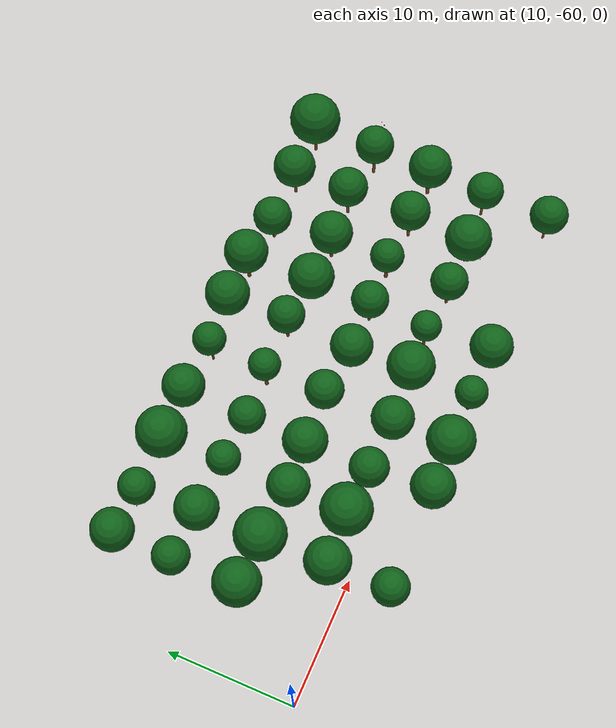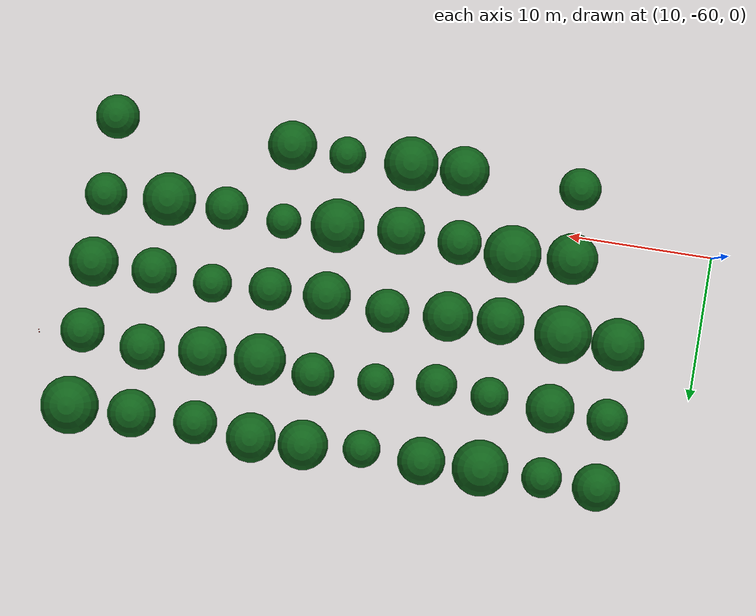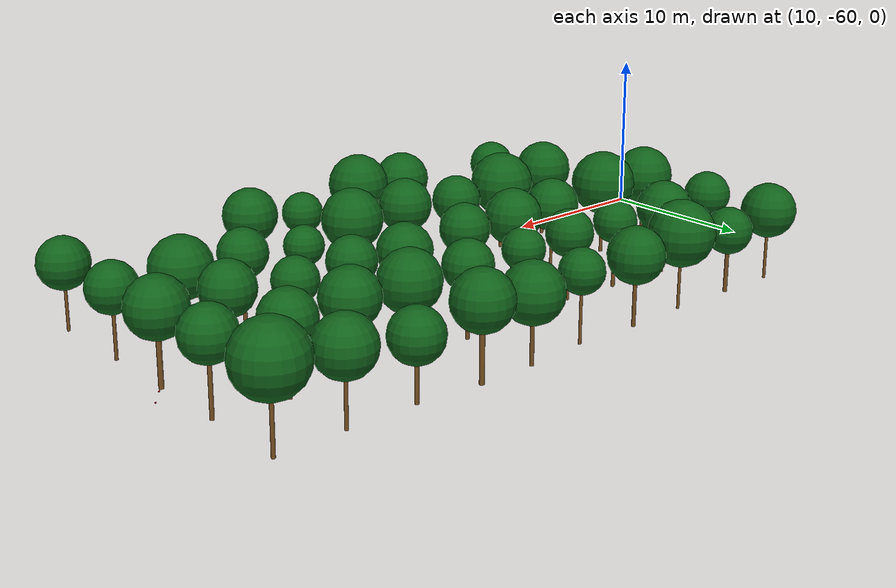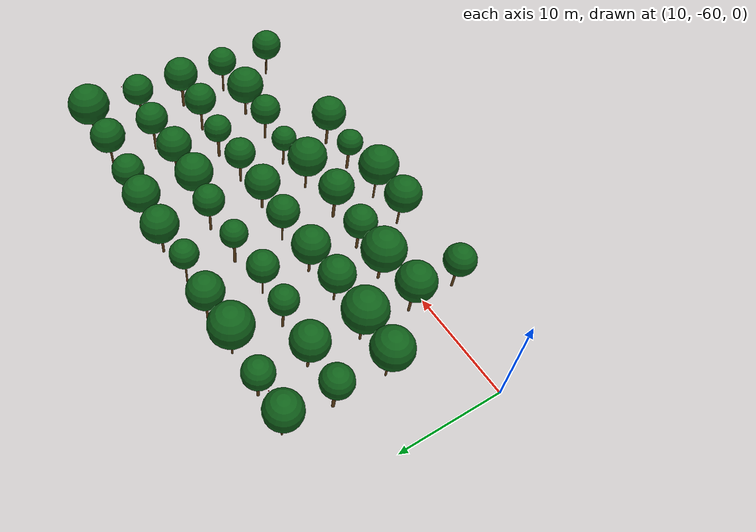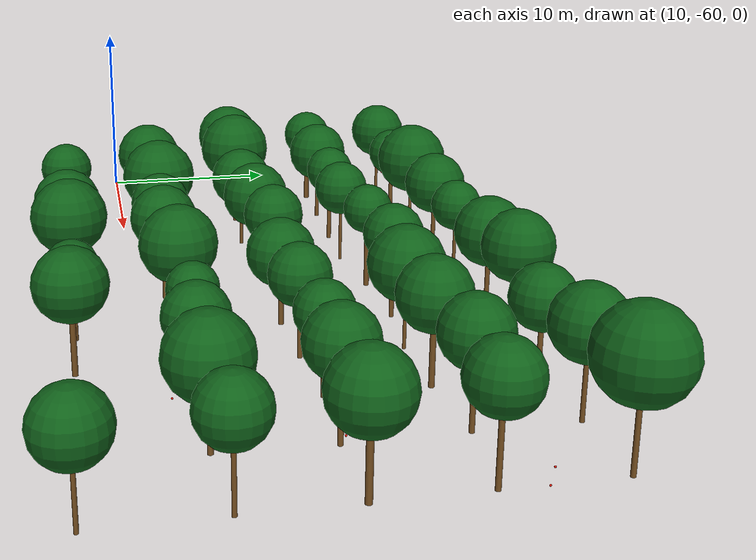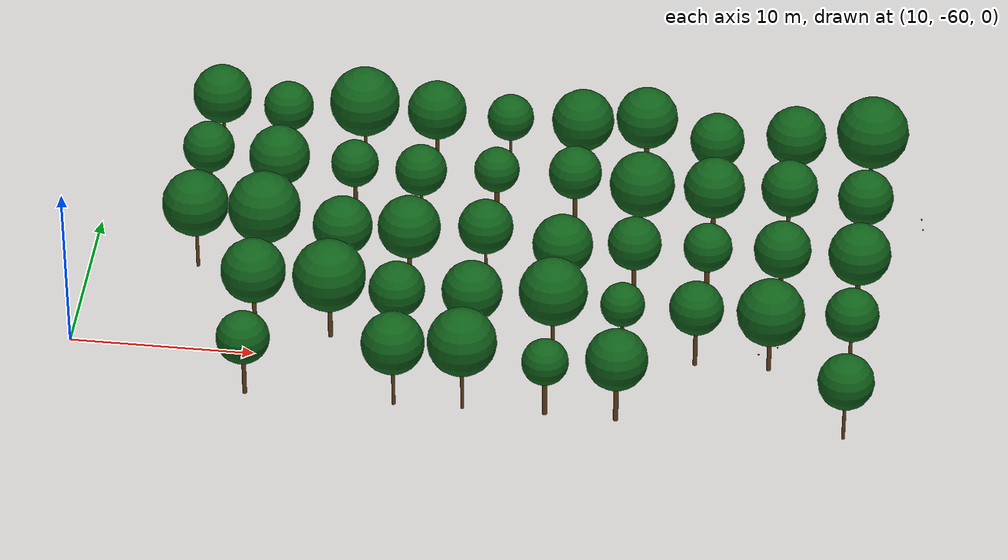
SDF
<sdf version="1.9">
 <world name="cheongsong_orchard">
  <model name="apple_tree_576">
   <static>true</static>
   <pose>19.97 -63.18 0 0 0 0</pose>
   <link name="link">
    <collision name="trunk_col">
     <pose>0 0 1.22 0 0 0</pose>
     <geometry><cylinder><radius>0.114</radius><length>2.45</length></cylinder></geometry>
    </collision>
    <visual name="trunk_vis">
     <pose>0 0 1.22 0 0 0</pose>
     <geometry><cylinder><radius>0.114</radius><length>2.45</length></cylinder></geometry>
     <material><ambient>0.35 0.22 0.08 1</ambient><diffuse>0.45 0.30 0.12 1</diffuse></material>
    </visual>
    <collision name="canopy_col">
     <pose>0 0 3.88 0 0 0</pose>
     <geometry><sphere><radius>1.44</radius></sphere></geometry>
    </collision>
    <visual name="canopy_vis">
     <pose>0 0 3.88 0 0 0</pose>
     <geometry><sphere><radius>1.44</radius></sphere></geometry>
     <material><ambient>0.04 0.28 0.06 1</ambient><diffuse>0.06 0.38 0.10 1</diffuse></material>
    </visual>
   </link>
  </model>
  <model name="apple_tree_578">
   <static>true</static>
   <pose>27.97 -63.17 0 0 0 0</pose>
   <link name="link">
    <collision name="trunk_col">
     <pose>0 0 1.28 0 0 0</pose>
     <geometry><cylinder><radius>0.095</radius><length>2.56</length></cylinder></geometry>
    </collision>
    <visual name="trunk_vis">
     <pose>0 0 1.28 0 0 0</pose>
     <geometry><cylinder><radius>0.095</radius><length>2.56</length></cylinder></geometry>
     <material><ambient>0.35 0.22 0.08 1</ambient><diffuse>0.45 0.30 0.12 1</diffuse></material>
    </visual>
    <collision name="canopy_col">
     <pose>0 0 4.26 0 0 0</pose>
     <geometry><sphere><radius>1.70</radius></sphere></geometry>
    </collision>
    <visual name="canopy_vis">
     <pose>0 0 4.26 0 0 0</pose>
     <geometry><sphere><radius>1.70</radius></sphere></geometry>
     <material><ambient>0.04 0.28 0.06 1</ambient><diffuse>0.06 0.38 0.10 1</diffuse></material>
    </visual>
   </link>
  </model>
  <model name="apple_tree_579">
   <static>true</static>
   <pose>31.64 -63.08 0 0 0 0</pose>
   <link name="link">
    <collision name="trunk_col">
     <pose>0 0 1.38 0 0 0</pose>
     <geometry><cylinder><radius>0.094</radius><length>2.76</length></cylinder></geometry>
    </collision>
    <visual name="trunk_vis">
     <pose>0 0 1.38 0 0 0</pose>
     <geometry><cylinder><radius>0.094</radius><length>2.76</length></cylinder></geometry>
     <material><ambient>0.35 0.22 0.08 1</ambient><diffuse>0.45 0.30 0.12 1</diffuse></material>
    </visual>
    <collision name="canopy_col">
     <pose>0 0 4.63 0 0 0</pose>
     <geometry><sphere><radius>1.86</radius></sphere></geometry>
    </collision>
    <visual name="canopy_vis">
     <pose>0 0 4.63 0 0 0</pose>
     <geometry><sphere><radius>1.86</radius></sphere></geometry>
     <material><ambient>0.04 0.28 0.06 1</ambient><diffuse>0.06 0.38 0.10 1</diffuse></material>
    </visual>
   </link>
  </model>
  <model name="apple_tree_580">
   <static>true</static>
   <pose>36.04 -63.04 0 0 0 0</pose>
   <link name="link">
    <collision name="trunk_col">
     <pose>0 0 1.19 0 0 0</pose>
     <geometry><cylinder><radius>0.137</radius><length>2.37</length></cylinder></geometry>
    </collision>
    <visual name="trunk_vis">
     <pose>0 0 1.19 0 0 0</pose>
     <geometry><cylinder><radius>0.137</radius><length>2.37</length></cylinder></geometry>
     <material><ambient>0.35 0.22 0.08 1</ambient><diffuse>0.45 0.30 0.12 1</diffuse></material>
    </visual>
    <collision name="canopy_col">
     <pose>0 0 3.63 0 0 0</pose>
     <geometry><sphere><radius>1.26</radius></sphere></geometry>
    </collision>
    <visual name="canopy_vis">
     <pose>0 0 3.63 0 0 0</pose>
     <geometry><sphere><radius>1.26</radius></sphere></geometry>
     <material><ambient>0.04 0.28 0.06 1</ambient><diffuse>0.06 0.38 0.10 1</diffuse></material>
    </visual>
   </link>
  </model>
  <model name="apple_tree_581">
   <static>true</static>
   <pose>39.83 -63.10 0 0 0 0</pose>
   <link name="link">
    <collision name="trunk_col">
     <pose>0 0 1.28 0 0 0</pose>
     <geometry><cylinder><radius>0.133</radius><length>2.55</length></cylinder></geometry>
    </collision>
    <visual name="trunk_vis">
     <pose>0 0 1.28 0 0 0</pose>
     <geometry><cylinder><radius>0.133</radius><length>2.55</length></cylinder></geometry>
     <material><ambient>0.35 0.22 0.08 1</ambient><diffuse>0.45 0.30 0.12 1</diffuse></material>
    </visual>
    <collision name="canopy_col">
     <pose>0 0 4.22 0 0 0</pose>
     <geometry><sphere><radius>1.67</radius></sphere></geometry>
    </collision>
    <visual name="canopy_vis">
     <pose>0 0 4.22 0 0 0</pose>
     <geometry><sphere><radius>1.67</radius></sphere></geometry>
     <material><ambient>0.04 0.28 0.06 1</ambient><diffuse>0.06 0.38 0.10 1</diffuse></material>
    </visual>
   </link>
  </model>
  <model name="apple_tree_584">
   <static>true</static>
   <pose>51.91 -63.21 0 0 0 0</pose>
   <link name="link">
    <collision name="trunk_col">
     <pose>0 0 1.24 0 0 0</pose>
     <geometry><cylinder><radius>0.090</radius><length>2.47</length></cylinder></geometry>
    </collision>
    <visual name="trunk_vis">
     <pose>0 0 1.24 0 0 0</pose>
     <geometry><cylinder><radius>0.090</radius><length>2.47</length></cylinder></geometry>
     <material><ambient>0.35 0.22 0.08 1</ambient><diffuse>0.45 0.30 0.12 1</diffuse></material>
    </visual>
    <collision name="canopy_col">
     <pose>0 0 3.98 0 0 0</pose>
     <geometry><sphere><radius>1.51</radius></sphere></geometry>
    </collision>
    <visual name="canopy_vis">
     <pose>0 0 3.98 0 0 0</pose>
     <geometry><sphere><radius>1.51</radius></sphere></geometry>
     <material><ambient>0.04 0.28 0.06 1</ambient><diffuse>0.06 0.38 0.10 1</diffuse></material>
    </visual>
   </link>
  </model>
  <model name="apple_tree_633">
   <static>true</static>
   <pose>19.82 -58.37 0 0 0 0</pose>
   <link name="link">
    <collision name="trunk_col">
     <pose>0 0 1.36 0 0 0</pose>
     <geometry><cylinder><radius>0.116</radius><length>2.71</length></cylinder></geometry>
    </collision>
    <visual name="trunk_vis">
     <pose>0 0 1.36 0 0 0</pose>
     <geometry><cylinder><radius>0.116</radius><length>2.71</length></cylinder></geometry>
     <material><ambient>0.35 0.22 0.08 1</ambient><diffuse>0.45 0.30 0.12 1</diffuse></material>
    </visual>
    <collision name="canopy_col">
     <pose>0 0 4.47 0 0 0</pose>
     <geometry><sphere><radius>1.76</radius></sphere></geometry>
    </collision>
    <visual name="canopy_vis">
     <pose>0 0 4.47 0 0 0</pose>
     <geometry><sphere><radius>1.76</radius></sphere></geometry>
     <material><ambient>0.04 0.28 0.06 1</ambient><diffuse>0.06 0.38 0.10 1</diffuse></material>
    </visual>
   </link>
  </model>
  <model name="apple_tree_634">
   <static>true</static>
   <pose>23.88 -58.09 0 0 0 0</pose>
   <link name="link">
    <collision name="trunk_col">
     <pose>0 0 1.15 0 0 0</pose>
     <geometry><cylinder><radius>0.126</radius><length>2.30</length></cylinder></geometry>
    </collision>
    <visual name="trunk_vis">
     <pose>0 0 1.15 0 0 0</pose>
     <geometry><cylinder><radius>0.126</radius><length>2.30</length></cylinder></geometry>
     <material><ambient>0.35 0.22 0.08 1</ambient><diffuse>0.45 0.30 0.12 1</diffuse></material>
    </visual>
    <collision name="canopy_col">
     <pose>0 0 4.28 0 0 0</pose>
     <geometry><sphere><radius>1.98</radius></sphere></geometry>
    </collision>
    <visual name="canopy_vis">
     <pose>0 0 4.28 0 0 0</pose>
     <geometry><sphere><radius>1.98</radius></sphere></geometry>
     <material><ambient>0.04 0.28 0.06 1</ambient><diffuse>0.06 0.38 0.10 1</diffuse></material>
    </visual>
   </link>
  </model>
  <model name="apple_tree_635">
   <static>true</static>
   <pose>27.56 -58.32 0 0 0 0</pose>
   <link name="link">
    <collision name="trunk_col">
     <pose>0 0 1.17 0 0 0</pose>
     <geometry><cylinder><radius>0.127</radius><length>2.34</length></cylinder></geometry>
    </collision>
    <visual name="trunk_vis">
     <pose>0 0 1.17 0 0 0</pose>
     <geometry><cylinder><radius>0.127</radius><length>2.34</length></cylinder></geometry>
     <material><ambient>0.35 0.22 0.08 1</ambient><diffuse>0.45 0.30 0.12 1</diffuse></material>
    </visual>
    <collision name="canopy_col">
     <pose>0 0 3.86 0 0 0</pose>
     <geometry><sphere><radius>1.52</radius></sphere></geometry>
    </collision>
    <visual name="canopy_vis">
     <pose>0 0 3.86 0 0 0</pose>
     <geometry><sphere><radius>1.52</radius></sphere></geometry>
     <material><ambient>0.04 0.28 0.06 1</ambient><diffuse>0.06 0.38 0.10 1</diffuse></material>
    </visual>
   </link>
  </model>
  <model name="apple_tree_636">
   <static>true</static>
   <pose>31.63 -58.48 0 0 0 0</pose>
   <link name="link">
    <collision name="trunk_col">
     <pose>0 0 1.32 0 0 0</pose>
     <geometry><cylinder><radius>0.144</radius><length>2.64</length></cylinder></geometry>
    </collision>
    <visual name="trunk_vis">
     <pose>0 0 1.32 0 0 0</pose>
     <geometry><cylinder><radius>0.144</radius><length>2.64</length></cylinder></geometry>
     <material><ambient>0.35 0.22 0.08 1</ambient><diffuse>0.45 0.30 0.12 1</diffuse></material>
    </visual>
    <collision name="canopy_col">
     <pose>0 0 4.28 0 0 0</pose>
     <geometry><sphere><radius>1.64</radius></sphere></geometry>
    </collision>
    <visual name="canopy_vis">
     <pose>0 0 4.28 0 0 0</pose>
     <geometry><sphere><radius>1.64</radius></sphere></geometry>
     <material><ambient>0.04 0.28 0.06 1</ambient><diffuse>0.06 0.38 0.10 1</diffuse></material>
    </visual>
   </link>
  </model>
  <model name="apple_tree_637">
   <static>true</static>
   <pose>35.95 -58.15 0 0 0 0</pose>
   <link name="link">
    <collision name="trunk_col">
     <pose>0 0 1.26 0 0 0</pose>
     <geometry><cylinder><radius>0.104</radius><length>2.52</length></cylinder></geometry>
    </collision>
    <visual name="trunk_vis">
     <pose>0 0 1.26 0 0 0</pose>
     <geometry><cylinder><radius>0.104</radius><length>2.52</length></cylinder></geometry>
     <material><ambient>0.35 0.22 0.08 1</ambient><diffuse>0.45 0.30 0.12 1</diffuse></material>
    </visual>
    <collision name="canopy_col">
     <pose>0 0 4.37 0 0 0</pose>
     <geometry><sphere><radius>1.85</radius></sphere></geometry>
    </collision>
    <visual name="canopy_vis">
     <pose>0 0 4.37 0 0 0</pose>
     <geometry><sphere><radius>1.85</radius></sphere></geometry>
     <material><ambient>0.04 0.28 0.06 1</ambient><diffuse>0.06 0.38 0.10 1</diffuse></material>
    </visual>
   </link>
  </model>
  <model name="apple_tree_638">
   <static>true</static>
   <pose>39.65 -57.91 0 0 0 0</pose>
   <link name="link">
    <collision name="trunk_col">
     <pose>0 0 1.20 0 0 0</pose>
     <geometry><cylinder><radius>0.108</radius><length>2.39</length></cylinder></geometry>
    </collision>
    <visual name="trunk_vis">
     <pose>0 0 1.20 0 0 0</pose>
     <geometry><cylinder><radius>0.108</radius><length>2.39</length></cylinder></geometry>
     <material><ambient>0.35 0.22 0.08 1</ambient><diffuse>0.45 0.30 0.12 1</diffuse></material>
    </visual>
    <collision name="canopy_col">
     <pose>0 0 3.60 0 0 0</pose>
     <geometry><sphere><radius>1.20</radius></sphere></geometry>
    </collision>
    <visual name="canopy_vis">
     <pose>0 0 3.60 0 0 0</pose>
     <geometry><sphere><radius>1.20</radius></sphere></geometry>
     <material><ambient>0.04 0.28 0.06 1</ambient><diffuse>0.06 0.38 0.10 1</diffuse></material>
    </visual>
   </link>
  </model>
  <model name="apple_tree_639">
   <static>true</static>
   <pose>43.62 -58.19 0 0 0 0</pose>
   <link name="link">
    <collision name="trunk_col">
     <pose>0 0 1.25 0 0 0</pose>
     <geometry><cylinder><radius>0.115</radius><length>2.49</length></cylinder></geometry>
    </collision>
    <visual name="trunk_vis">
     <pose>0 0 1.25 0 0 0</pose>
     <geometry><cylinder><radius>0.115</radius><length>2.49</length></cylinder></geometry>
     <material><ambient>0.35 0.22 0.08 1</ambient><diffuse>0.45 0.30 0.12 1</diffuse></material>
    </visual>
    <collision name="canopy_col">
     <pose>0 0 3.97 0 0 0</pose>
     <geometry><sphere><radius>1.47</radius></sphere></geometry>
    </collision>
    <visual name="canopy_vis">
     <pose>0 0 3.97 0 0 0</pose>
     <geometry><sphere><radius>1.47</radius></sphere></geometry>
     <material><ambient>0.04 0.28 0.06 1</ambient><diffuse>0.06 0.38 0.10 1</diffuse></material>
    </visual>
   </link>
  </model>
  <model name="apple_tree_640">
   <static>true</static>
   <pose>47.58 -58.18 0 0 0 0</pose>
   <link name="link">
    <collision name="trunk_col">
     <pose>0 0 1.10 0 0 0</pose>
     <geometry><cylinder><radius>0.118</radius><length>2.20</length></cylinder></geometry>
    </collision>
    <visual name="trunk_vis">
     <pose>0 0 1.10 0 0 0</pose>
     <geometry><cylinder><radius>0.118</radius><length>2.20</length></cylinder></geometry>
     <material><ambient>0.35 0.22 0.08 1</ambient><diffuse>0.45 0.30 0.12 1</diffuse></material>
    </visual>
    <collision name="canopy_col">
     <pose>0 0 4.04 0 0 0</pose>
     <geometry><sphere><radius>1.83</radius></sphere></geometry>
    </collision>
    <visual name="canopy_vis">
     <pose>0 0 4.04 0 0 0</pose>
     <geometry><sphere><radius>1.83</radius></sphere></geometry>
     <material><ambient>0.04 0.28 0.06 1</ambient><diffuse>0.06 0.38 0.10 1</diffuse></material>
    </visual>
   </link>
  </model>
  <model name="apple_tree_641">
   <static>true</static>
   <pose>51.89 -57.89 0 0 0 0</pose>
   <link name="link">
    <collision name="trunk_col">
     <pose>0 0 1.30 0 0 0</pose>
     <geometry><cylinder><radius>0.096</radius><length>2.61</length></cylinder></geometry>
    </collision>
    <visual name="trunk_vis">
     <pose>0 0 1.30 0 0 0</pose>
     <geometry><cylinder><radius>0.096</radius><length>2.61</length></cylinder></geometry>
     <material><ambient>0.35 0.22 0.08 1</ambient><diffuse>0.45 0.30 0.12 1</diffuse></material>
    </visual>
    <collision name="canopy_col">
     <pose>0 0 4.06 0 0 0</pose>
     <geometry><sphere><radius>1.45</radius></sphere></geometry>
    </collision>
    <visual name="canopy_vis">
     <pose>0 0 4.06 0 0 0</pose>
     <geometry><sphere><radius>1.45</radius></sphere></geometry>
     <material><ambient>0.04 0.28 0.06 1</ambient><diffuse>0.06 0.38 0.10 1</diffuse></material>
    </visual>
   </link>
  </model>
  <model name="apple_tree_691">
   <static>true</static>
   <pose>15.86 -53.08 0 0 0 0</pose>
   <link name="link">
    <collision name="trunk_col">
     <pose>0 0 1.31 0 0 0</pose>
     <geometry><cylinder><radius>0.091</radius><length>2.62</length></cylinder></geometry>
    </collision>
    <visual name="trunk_vis">
     <pose>0 0 1.31 0 0 0</pose>
     <geometry><cylinder><radius>0.091</radius><length>2.62</length></cylinder></geometry>
     <material><ambient>0.35 0.22 0.08 1</ambient><diffuse>0.45 0.30 0.12 1</diffuse></material>
    </visual>
    <collision name="canopy_col">
     <pose>0 0 4.44 0 0 0</pose>
     <geometry><sphere><radius>1.82</radius></sphere></geometry>
    </collision>
    <visual name="canopy_vis">
     <pose>0 0 4.44 0 0 0</pose>
     <geometry><sphere><radius>1.82</radius></sphere></geometry>
     <material><ambient>0.04 0.28 0.06 1</ambient><diffuse>0.06 0.38 0.10 1</diffuse></material>
    </visual>
   </link>
  </model>
  <model name="apple_tree_692">
   <static>true</static>
   <pose>19.66 -53.19 0 0 0 0</pose>
   <link name="link">
    <collision name="trunk_col">
     <pose>0 0 1.31 0 0 0</pose>
     <geometry><cylinder><radius>0.104</radius><length>2.62</length></cylinder></geometry>
    </collision>
    <visual name="trunk_vis">
     <pose>0 0 1.31 0 0 0</pose>
     <geometry><cylinder><radius>0.104</radius><length>2.62</length></cylinder></geometry>
     <material><ambient>0.35 0.22 0.08 1</ambient><diffuse>0.45 0.30 0.12 1</diffuse></material>
    </visual>
    <collision name="canopy_col">
     <pose>0 0 4.59 0 0 0</pose>
     <geometry><sphere><radius>1.98</radius></sphere></geometry>
    </collision>
    <visual name="canopy_vis">
     <pose>0 0 4.59 0 0 0</pose>
     <geometry><sphere><radius>1.98</radius></sphere></geometry>
     <material><ambient>0.04 0.28 0.06 1</ambient><diffuse>0.06 0.38 0.10 1</diffuse></material>
    </visual>
   </link>
  </model>
  <model name="apple_tree_693">
   <static>true</static>
   <pose>23.97 -53.45 0 0 0 0</pose>
   <link name="link">
    <collision name="trunk_col">
     <pose>0 0 1.15 0 0 0</pose>
     <geometry><cylinder><radius>0.091</radius><length>2.30</length></cylinder></geometry>
    </collision>
    <visual name="trunk_vis">
     <pose>0 0 1.15 0 0 0</pose>
     <geometry><cylinder><radius>0.091</radius><length>2.30</length></cylinder></geometry>
     <material><ambient>0.35 0.22 0.08 1</ambient><diffuse>0.45 0.30 0.12 1</diffuse></material>
    </visual>
    <collision name="canopy_col">
     <pose>0 0 3.93 0 0 0</pose>
     <geometry><sphere><radius>1.63</radius></sphere></geometry>
    </collision>
    <visual name="canopy_vis">
     <pose>0 0 3.93 0 0 0</pose>
     <geometry><sphere><radius>1.63</radius></sphere></geometry>
     <material><ambient>0.04 0.28 0.06 1</ambient><diffuse>0.06 0.38 0.10 1</diffuse></material>
    </visual>
   </link>
  </model>
  <model name="apple_tree_694">
   <static>true</static>
   <pose>27.57 -53.20 0 0 0 0</pose>
   <link name="link">
    <collision name="trunk_col">
     <pose>0 0 1.13 0 0 0</pose>
     <geometry><cylinder><radius>0.119</radius><length>2.26</length></cylinder></geometry>
    </collision>
    <visual name="trunk_vis">
     <pose>0 0 1.13 0 0 0</pose>
     <geometry><cylinder><radius>0.119</radius><length>2.26</length></cylinder></geometry>
     <material><ambient>0.35 0.22 0.08 1</ambient><diffuse>0.45 0.30 0.12 1</diffuse></material>
    </visual>
    <collision name="canopy_col">
     <pose>0 0 3.97 0 0 0</pose>
     <geometry><sphere><radius>1.72</radius></sphere></geometry>
    </collision>
    <visual name="canopy_vis">
     <pose>0 0 3.97 0 0 0</pose>
     <geometry><sphere><radius>1.72</radius></sphere></geometry>
     <material><ambient>0.04 0.28 0.06 1</ambient><diffuse>0.06 0.38 0.10 1</diffuse></material>
    </visual>
   </link>
  </model>
  <model name="apple_tree_695">
   <static>true</static>
   <pose>31.72 -52.95 0 0 0 0</pose>
   <link name="link">
    <collision name="trunk_col">
     <pose>0 0 1.33 0 0 0</pose>
     <geometry><cylinder><radius>0.081</radius><length>2.66</length></cylinder></geometry>
    </collision>
    <visual name="trunk_vis">
     <pose>0 0 1.33 0 0 0</pose>
     <geometry><cylinder><radius>0.081</radius><length>2.66</length></cylinder></geometry>
     <material><ambient>0.35 0.22 0.08 1</ambient><diffuse>0.45 0.30 0.12 1</diffuse></material>
    </visual>
    <collision name="canopy_col">
     <pose>0 0 4.17 0 0 0</pose>
     <geometry><sphere><radius>1.50</radius></sphere></geometry>
    </collision>
    <visual name="canopy_vis">
     <pose>0 0 4.17 0 0 0</pose>
     <geometry><sphere><radius>1.50</radius></sphere></geometry>
     <material><ambient>0.04 0.28 0.06 1</ambient><diffuse>0.06 0.38 0.10 1</diffuse></material>
    </visual>
   </link>
  </model>
  <model name="apple_tree_696">
   <static>true</static>
   <pose>35.95 -53.34 0 0 0 0</pose>
   <link name="link">
    <collision name="trunk_col">
     <pose>0 0 0.99 0 0 0</pose>
     <geometry><cylinder><radius>0.129</radius><length>1.99</length></cylinder></geometry>
    </collision>
    <visual name="trunk_vis">
     <pose>0 0 0.99 0 0 0</pose>
     <geometry><cylinder><radius>0.129</radius><length>1.99</length></cylinder></geometry>
     <material><ambient>0.35 0.22 0.08 1</ambient><diffuse>0.45 0.30 0.12 1</diffuse></material>
    </visual>
    <collision name="canopy_col">
     <pose>0 0 3.64 0 0 0</pose>
     <geometry><sphere><radius>1.65</radius></sphere></geometry>
    </collision>
    <visual name="canopy_vis">
     <pose>0 0 3.64 0 0 0</pose>
     <geometry><sphere><radius>1.65</radius></sphere></geometry>
     <material><ambient>0.04 0.28 0.06 1</ambient><diffuse>0.06 0.38 0.10 1</diffuse></material>
    </visual>
   </link>
  </model>
  <model name="apple_tree_697">
   <static>true</static>
   <pose>39.84 -53.20 0 0 0 0</pose>
   <link name="link">
    <collision name="trunk_col">
     <pose>0 0 1.25 0 0 0</pose>
     <geometry><cylinder><radius>0.118</radius><length>2.50</length></cylinder></geometry>
    </collision>
    <visual name="trunk_vis">
     <pose>0 0 1.25 0 0 0</pose>
     <geometry><cylinder><radius>0.118</radius><length>2.50</length></cylinder></geometry>
     <material><ambient>0.35 0.22 0.08 1</ambient><diffuse>0.45 0.30 0.12 1</diffuse></material>
    </visual>
    <collision name="canopy_col">
     <pose>0 0 3.96 0 0 0</pose>
     <geometry><sphere><radius>1.46</radius></sphere></geometry>
    </collision>
    <visual name="canopy_vis">
     <pose>0 0 3.96 0 0 0</pose>
     <geometry><sphere><radius>1.46</radius></sphere></geometry>
     <material><ambient>0.04 0.28 0.06 1</ambient><diffuse>0.06 0.38 0.10 1</diffuse></material>
    </visual>
   </link>
  </model>
  <model name="apple_tree_698">
   <static>true</static>
   <pose>43.79 -52.97 0 0 0 0</pose>
   <link name="link">
    <collision name="trunk_col">
     <pose>0 0 1.27 0 0 0</pose>
     <geometry><cylinder><radius>0.140</radius><length>2.53</length></cylinder></geometry>
    </collision>
    <visual name="trunk_vis">
     <pose>0 0 1.27 0 0 0</pose>
     <geometry><cylinder><radius>0.140</radius><length>2.53</length></cylinder></geometry>
     <material><ambient>0.35 0.22 0.08 1</ambient><diffuse>0.45 0.30 0.12 1</diffuse></material>
    </visual>
    <collision name="canopy_col">
     <pose>0 0 3.86 0 0 0</pose>
     <geometry><sphere><radius>1.33</radius></sphere></geometry>
    </collision>
    <visual name="canopy_vis">
     <pose>0 0 3.86 0 0 0</pose>
     <geometry><sphere><radius>1.33</radius></sphere></geometry>
     <material><ambient>0.04 0.28 0.06 1</ambient><diffuse>0.06 0.38 0.10 1</diffuse></material>
    </visual>
   </link>
  </model>
  <model name="apple_tree_699">
   <static>true</static>
   <pose>47.83 -53.22 0 0 0 0</pose>
   <link name="link">
    <collision name="trunk_col">
     <pose>0 0 1.37 0 0 0</pose>
     <geometry><cylinder><radius>0.118</radius><length>2.75</length></cylinder></geometry>
    </collision>
    <visual name="trunk_vis">
     <pose>0 0 1.37 0 0 0</pose>
     <geometry><cylinder><radius>0.118</radius><length>2.75</length></cylinder></geometry>
     <material><ambient>0.35 0.22 0.08 1</ambient><diffuse>0.45 0.30 0.12 1</diffuse></material>
    </visual>
    <collision name="canopy_col">
     <pose>0 0 4.31 0 0 0</pose>
     <geometry><sphere><radius>1.56</radius></sphere></geometry>
    </collision>
    <visual name="canopy_vis">
     <pose>0 0 4.31 0 0 0</pose>
     <geometry><sphere><radius>1.56</radius></sphere></geometry>
     <material><ambient>0.04 0.28 0.06 1</ambient><diffuse>0.06 0.38 0.10 1</diffuse></material>
    </visual>
   </link>
  </model>
  <model name="apple_tree_700">
   <static>true</static>
   <pose>51.98 -53.19 0 0 0 0</pose>
   <link name="link">
    <collision name="trunk_col">
     <pose>0 0 1.33 0 0 0</pose>
     <geometry><cylinder><radius>0.142</radius><length>2.67</length></cylinder></geometry>
    </collision>
    <visual name="trunk_vis">
     <pose>0 0 1.33 0 0 0</pose>
     <geometry><cylinder><radius>0.142</radius><length>2.67</length></cylinder></geometry>
     <material><ambient>0.35 0.22 0.08 1</ambient><diffuse>0.45 0.30 0.12 1</diffuse></material>
    </visual>
    <collision name="canopy_col">
     <pose>0 0 4.36 0 0 0</pose>
     <geometry><sphere><radius>1.70</radius></sphere></geometry>
    </collision>
    <visual name="canopy_vis">
     <pose>0 0 4.36 0 0 0</pose>
     <geometry><sphere><radius>1.70</radius></sphere></geometry>
     <material><ambient>0.04 0.28 0.06 1</ambient><diffuse>0.06 0.38 0.10 1</diffuse></material>
    </visual>
   </link>
  </model>
  <model name="apple_tree_750">
   <static>true</static>
   <pose>15.78 -47.93 0 0 0 0</pose>
   <link name="link">
    <collision name="trunk_col">
     <pose>0 0 1.41 0 0 0</pose>
     <geometry><cylinder><radius>0.145</radius><length>2.82</length></cylinder></geometry>
    </collision>
    <visual name="trunk_vis">
     <pose>0 0 1.41 0 0 0</pose>
     <geometry><cylinder><radius>0.145</radius><length>2.82</length></cylinder></geometry>
     <material><ambient>0.35 0.22 0.08 1</ambient><diffuse>0.45 0.30 0.12 1</diffuse></material>
    </visual>
    <collision name="canopy_col">
     <pose>0 0 4.24 0 0 0</pose>
     <geometry><sphere><radius>1.42</radius></sphere></geometry>
    </collision>
    <visual name="canopy_vis">
     <pose>0 0 4.24 0 0 0</pose>
     <geometry><sphere><radius>1.42</radius></sphere></geometry>
     <material><ambient>0.04 0.28 0.06 1</ambient><diffuse>0.06 0.38 0.10 1</diffuse></material>
    </visual>
   </link>
  </model>
  <model name="apple_tree_751">
   <static>true</static>
   <pose>19.73 -48.08 0 0 0 0</pose>
   <link name="link">
    <collision name="trunk_col">
     <pose>0 0 1.21 0 0 0</pose>
     <geometry><cylinder><radius>0.115</radius><length>2.41</length></cylinder></geometry>
    </collision>
    <visual name="trunk_vis">
     <pose>0 0 1.21 0 0 0</pose>
     <geometry><cylinder><radius>0.115</radius><length>2.41</length></cylinder></geometry>
     <material><ambient>0.35 0.22 0.08 1</ambient><diffuse>0.45 0.30 0.12 1</diffuse></material>
    </visual>
    <collision name="canopy_col">
     <pose>0 0 4.10 0 0 0</pose>
     <geometry><sphere><radius>1.68</radius></sphere></geometry>
    </collision>
    <visual name="canopy_vis">
     <pose>0 0 4.10 0 0 0</pose>
     <geometry><sphere><radius>1.68</radius></sphere></geometry>
     <material><ambient>0.04 0.28 0.06 1</ambient><diffuse>0.06 0.38 0.10 1</diffuse></material>
    </visual>
   </link>
  </model>
  <model name="apple_tree_752">
   <static>true</static>
   <pose>23.94 -48.27 0 0 0 0</pose>
   <link name="link">
    <collision name="trunk_col">
     <pose>0 0 1.39 0 0 0</pose>
     <geometry><cylinder><radius>0.114</radius><length>2.78</length></cylinder></geometry>
    </collision>
    <visual name="trunk_vis">
     <pose>0 0 1.39 0 0 0</pose>
     <geometry><cylinder><radius>0.114</radius><length>2.78</length></cylinder></geometry>
     <material><ambient>0.35 0.22 0.08 1</ambient><diffuse>0.45 0.30 0.12 1</diffuse></material>
    </visual>
    <collision name="canopy_col">
     <pose>0 0 4.09 0 0 0</pose>
     <geometry><sphere><radius>1.31</radius></sphere></geometry>
    </collision>
    <visual name="canopy_vis">
     <pose>0 0 4.09 0 0 0</pose>
     <geometry><sphere><radius>1.31</radius></sphere></geometry>
     <material><ambient>0.04 0.28 0.06 1</ambient><diffuse>0.06 0.38 0.10 1</diffuse></material>
    </visual>
   </link>
  </model>
  <model name="apple_tree_753">
   <static>true</static>
   <pose>27.63 -48.47 0 0 0 0</pose>
   <link name="link">
    <collision name="trunk_col">
     <pose>0 0 1.35 0 0 0</pose>
     <geometry><cylinder><radius>0.081</radius><length>2.70</length></cylinder></geometry>
    </collision>
    <visual name="trunk_vis">
     <pose>0 0 1.35 0 0 0</pose>
     <geometry><cylinder><radius>0.081</radius><length>2.70</length></cylinder></geometry>
     <material><ambient>0.35 0.22 0.08 1</ambient><diffuse>0.45 0.30 0.12 1</diffuse></material>
    </visual>
    <collision name="canopy_col">
     <pose>0 0 4.11 0 0 0</pose>
     <geometry><sphere><radius>1.42</radius></sphere></geometry>
    </collision>
    <visual name="canopy_vis">
     <pose>0 0 4.11 0 0 0</pose>
     <geometry><sphere><radius>1.42</radius></sphere></geometry>
     <material><ambient>0.04 0.28 0.06 1</ambient><diffuse>0.06 0.38 0.10 1</diffuse></material>
    </visual>
   </link>
  </model>
  <model name="apple_tree_754">
   <static>true</static>
   <pose>31.76 -48.04 0 0 0 0</pose>
   <link name="link">
    <collision name="trunk_col">
     <pose>0 0 1.46 0 0 0</pose>
     <geometry><cylinder><radius>0.133</radius><length>2.91</length></cylinder></geometry>
    </collision>
    <visual name="trunk_vis">
     <pose>0 0 1.46 0 0 0</pose>
     <geometry><cylinder><radius>0.133</radius><length>2.91</length></cylinder></geometry>
     <material><ambient>0.35 0.22 0.08 1</ambient><diffuse>0.45 0.30 0.12 1</diffuse></material>
    </visual>
    <collision name="canopy_col">
     <pose>0 0 4.17 0 0 0</pose>
     <geometry><sphere><radius>1.25</radius></sphere></geometry>
    </collision>
    <visual name="canopy_vis">
     <pose>0 0 4.17 0 0 0</pose>
     <geometry><sphere><radius>1.25</radius></sphere></geometry>
     <material><ambient>0.04 0.28 0.06 1</ambient><diffuse>0.06 0.38 0.10 1</diffuse></material>
    </visual>
   </link>
  </model>
  <model name="apple_tree_755">
   <static>true</static>
   <pose>36.07 -47.90 0 0 0 0</pose>
   <link name="link">
    <collision name="trunk_col">
     <pose>0 0 1.40 0 0 0</pose>
     <geometry><cylinder><radius>0.114</radius><length>2.80</length></cylinder></geometry>
    </collision>
    <visual name="trunk_vis">
     <pose>0 0 1.40 0 0 0</pose>
     <geometry><cylinder><radius>0.114</radius><length>2.80</length></cylinder></geometry>
     <material><ambient>0.35 0.22 0.08 1</ambient><diffuse>0.45 0.30 0.12 1</diffuse></material>
    </visual>
    <collision name="canopy_col">
     <pose>0 0 4.26 0 0 0</pose>
     <geometry><sphere><radius>1.46</radius></sphere></geometry>
    </collision>
    <visual name="canopy_vis">
     <pose>0 0 4.26 0 0 0</pose>
     <geometry><sphere><radius>1.46</radius></sphere></geometry>
     <material><ambient>0.04 0.28 0.06 1</ambient><diffuse>0.06 0.38 0.10 1</diffuse></material>
    </visual>
   </link>
  </model>
  <model name="apple_tree_756">
   <static>true</static>
   <pose>39.79 -48.34 0 0 0 0</pose>
   <link name="link">
    <collision name="trunk_col">
     <pose>0 0 1.17 0 0 0</pose>
     <geometry><cylinder><radius>0.083</radius><length>2.34</length></cylinder></geometry>
    </collision>
    <visual name="trunk_vis">
     <pose>0 0 1.17 0 0 0</pose>
     <geometry><cylinder><radius>0.083</radius><length>2.34</length></cylinder></geometry>
     <material><ambient>0.35 0.22 0.08 1</ambient><diffuse>0.45 0.30 0.12 1</diffuse></material>
    </visual>
    <collision name="canopy_col">
     <pose>0 0 4.13 0 0 0</pose>
     <geometry><sphere><radius>1.79</radius></sphere></geometry>
    </collision>
    <visual name="canopy_vis">
     <pose>0 0 4.13 0 0 0</pose>
     <geometry><sphere><radius>1.79</radius></sphere></geometry>
     <material><ambient>0.04 0.28 0.06 1</ambient><diffuse>0.06 0.38 0.10 1</diffuse></material>
    </visual>
   </link>
  </model>
  <model name="apple_tree_757">
   <static>true</static>
   <pose>43.74 -48.30 0 0 0 0</pose>
   <link name="link">
    <collision name="trunk_col">
     <pose>0 0 1.27 0 0 0</pose>
     <geometry><cylinder><radius>0.132</radius><length>2.55</length></cylinder></geometry>
    </collision>
    <visual name="trunk_vis">
     <pose>0 0 1.27 0 0 0</pose>
     <geometry><cylinder><radius>0.132</radius><length>2.55</length></cylinder></geometry>
     <material><ambient>0.35 0.22 0.08 1</ambient><diffuse>0.45 0.30 0.12 1</diffuse></material>
    </visual>
    <collision name="canopy_col">
     <pose>0 0 4.22 0 0 0</pose>
     <geometry><sphere><radius>1.68</radius></sphere></geometry>
    </collision>
    <visual name="canopy_vis">
     <pose>0 0 4.22 0 0 0</pose>
     <geometry><sphere><radius>1.68</radius></sphere></geometry>
     <material><ambient>0.04 0.28 0.06 1</ambient><diffuse>0.06 0.38 0.10 1</diffuse></material>
    </visual>
   </link>
  </model>
  <model name="apple_tree_758">
   <static>true</static>
   <pose>47.83 -47.96 0 0 0 0</pose>
   <link name="link">
    <collision name="trunk_col">
     <pose>0 0 1.36 0 0 0</pose>
     <geometry><cylinder><radius>0.116</radius><length>2.72</length></cylinder></geometry>
    </collision>
    <visual name="trunk_vis">
     <pose>0 0 1.36 0 0 0</pose>
     <geometry><cylinder><radius>0.116</radius><length>2.72</length></cylinder></geometry>
     <material><ambient>0.35 0.22 0.08 1</ambient><diffuse>0.45 0.30 0.12 1</diffuse></material>
    </visual>
    <collision name="canopy_col">
     <pose>0 0 4.28 0 0 0</pose>
     <geometry><sphere><radius>1.56</radius></sphere></geometry>
    </collision>
    <visual name="canopy_vis">
     <pose>0 0 4.28 0 0 0</pose>
     <geometry><sphere><radius>1.56</radius></sphere></geometry>
     <material><ambient>0.04 0.28 0.06 1</ambient><diffuse>0.06 0.38 0.10 1</diffuse></material>
    </visual>
   </link>
  </model>
  <model name="apple_tree_759">
   <static>true</static>
   <pose>52.01 -48.46 0 0 0 0</pose>
   <link name="link">
    <collision name="trunk_col">
     <pose>0 0 1.46 0 0 0</pose>
     <geometry><cylinder><radius>0.116</radius><length>2.92</length></cylinder></geometry>
    </collision>
    <visual name="trunk_vis">
     <pose>0 0 1.46 0 0 0</pose>
     <geometry><cylinder><radius>0.116</radius><length>2.92</length></cylinder></geometry>
     <material><ambient>0.35 0.22 0.08 1</ambient><diffuse>0.45 0.30 0.12 1</diffuse></material>
    </visual>
    <collision name="canopy_col">
     <pose>0 0 4.44 0 0 0</pose>
     <geometry><sphere><radius>1.52</radius></sphere></geometry>
    </collision>
    <visual name="canopy_vis">
     <pose>0 0 4.44 0 0 0</pose>
     <geometry><sphere><radius>1.52</radius></sphere></geometry>
     <material><ambient>0.04 0.28 0.06 1</ambient><diffuse>0.06 0.38 0.10 1</diffuse></material>
    </visual>
   </link>
  </model>
  <model name="apple_tree_809">
   <static>true</static>
   <pose>15.82 -43.25 0 0 0 0</pose>
   <link name="link">
    <collision name="trunk_col">
     <pose>0 0 1.32 0 0 0</pose>
     <geometry><cylinder><radius>0.087</radius><length>2.65</length></cylinder></geometry>
    </collision>
    <visual name="trunk_vis">
     <pose>0 0 1.32 0 0 0</pose>
     <geometry><cylinder><radius>0.087</radius><length>2.65</length></cylinder></geometry>
     <material><ambient>0.35 0.22 0.08 1</ambient><diffuse>0.45 0.30 0.12 1</diffuse></material>
    </visual>
    <collision name="canopy_col">
     <pose>0 0 4.29 0 0 0</pose>
     <geometry><sphere><radius>1.64</radius></sphere></geometry>
    </collision>
    <visual name="canopy_vis">
     <pose>0 0 4.29 0 0 0</pose>
     <geometry><sphere><radius>1.64</radius></sphere></geometry>
     <material><ambient>0.04 0.28 0.06 1</ambient><diffuse>0.06 0.38 0.10 1</diffuse></material>
    </visual>
   </link>
  </model>
  <model name="apple_tree_810">
   <static>true</static>
   <pose>19.55 -43.31 0 0 0 0</pose>
   <link name="link">
    <collision name="trunk_col">
     <pose>0 0 1.20 0 0 0</pose>
     <geometry><cylinder><radius>0.121</radius><length>2.40</length></cylinder></geometry>
    </collision>
    <visual name="trunk_vis">
     <pose>0 0 1.20 0 0 0</pose>
     <geometry><cylinder><radius>0.121</radius><length>2.40</length></cylinder></geometry>
     <material><ambient>0.35 0.22 0.08 1</ambient><diffuse>0.45 0.30 0.12 1</diffuse></material>
    </visual>
    <collision name="canopy_col">
     <pose>0 0 3.79 0 0 0</pose>
     <geometry><sphere><radius>1.39</radius></sphere></geometry>
    </collision>
    <visual name="canopy_vis">
     <pose>0 0 3.79 0 0 0</pose>
     <geometry><sphere><radius>1.39</radius></sphere></geometry>
     <material><ambient>0.04 0.28 0.06 1</ambient><diffuse>0.06 0.38 0.10 1</diffuse></material>
    </visual>
   </link>
  </model>
  <model name="apple_tree_811">
   <static>true</static>
   <pose>23.84 -43.35 0 0 0 0</pose>
   <link name="link">
    <collision name="trunk_col">
     <pose>0 0 1.30 0 0 0</pose>
     <geometry><cylinder><radius>0.085</radius><length>2.60</length></cylinder></geometry>
    </collision>
    <visual name="trunk_vis">
     <pose>0 0 1.30 0 0 0</pose>
     <geometry><cylinder><radius>0.085</radius><length>2.60</length></cylinder></geometry>
     <material><ambient>0.35 0.22 0.08 1</ambient><diffuse>0.45 0.30 0.12 1</diffuse></material>
    </visual>
    <collision name="canopy_col">
     <pose>0 0 4.54 0 0 0</pose>
     <geometry><sphere><radius>1.94</radius></sphere></geometry>
    </collision>
    <visual name="canopy_vis">
     <pose>0 0 4.54 0 0 0</pose>
     <geometry><sphere><radius>1.94</radius></sphere></geometry>
     <material><ambient>0.04 0.28 0.06 1</ambient><diffuse>0.06 0.38 0.10 1</diffuse></material>
    </visual>
   </link>
  </model>
  <model name="apple_tree_812">
   <static>true</static>
   <pose>27.86 -43.20 0 0 0 0</pose>
   <link name="link">
    <collision name="trunk_col">
     <pose>0 0 1.26 0 0 0</pose>
     <geometry><cylinder><radius>0.112</radius><length>2.53</length></cylinder></geometry>
    </collision>
    <visual name="trunk_vis">
     <pose>0 0 1.26 0 0 0</pose>
     <geometry><cylinder><radius>0.112</radius><length>2.53</length></cylinder></geometry>
     <material><ambient>0.35 0.22 0.08 1</ambient><diffuse>0.45 0.30 0.12 1</diffuse></material>
    </visual>
    <collision name="canopy_col">
     <pose>0 0 4.17 0 0 0</pose>
     <geometry><sphere><radius>1.64</radius></sphere></geometry>
    </collision>
    <visual name="canopy_vis">
     <pose>0 0 4.17 0 0 0</pose>
     <geometry><sphere><radius>1.64</radius></sphere></geometry>
     <material><ambient>0.04 0.28 0.06 1</ambient><diffuse>0.06 0.38 0.10 1</diffuse></material>
    </visual>
   </link>
  </model>
  <model name="apple_tree_813">
   <static>true</static>
   <pose>32.00 -43.38 0 0 0 0</pose>
   <link name="link">
    <collision name="trunk_col">
     <pose>0 0 1.44 0 0 0</pose>
     <geometry><cylinder><radius>0.085</radius><length>2.88</length></cylinder></geometry>
    </collision>
    <visual name="trunk_vis">
     <pose>0 0 1.44 0 0 0</pose>
     <geometry><cylinder><radius>0.085</radius><length>2.88</length></cylinder></geometry>
     <material><ambient>0.35 0.22 0.08 1</ambient><diffuse>0.45 0.30 0.12 1</diffuse></material>
    </visual>
    <collision name="canopy_col">
     <pose>0 0 4.17 0 0 0</pose>
     <geometry><sphere><radius>1.29</radius></sphere></geometry>
    </collision>
    <visual name="canopy_vis">
     <pose>0 0 4.17 0 0 0</pose>
     <geometry><sphere><radius>1.29</radius></sphere></geometry>
     <material><ambient>0.04 0.28 0.06 1</ambient><diffuse>0.06 0.38 0.10 1</diffuse></material>
    </visual>
   </link>
  </model>
  <model name="apple_tree_814">
   <static>true</static>
   <pose>36.00 -43.03 0 0 0 0</pose>
   <link name="link">
    <collision name="trunk_col">
     <pose>0 0 1.16 0 0 0</pose>
     <geometry><cylinder><radius>0.115</radius><length>2.32</length></cylinder></geometry>
    </collision>
    <visual name="trunk_vis">
     <pose>0 0 1.16 0 0 0</pose>
     <geometry><cylinder><radius>0.115</radius><length>2.32</length></cylinder></geometry>
     <material><ambient>0.35 0.22 0.08 1</ambient><diffuse>0.45 0.30 0.12 1</diffuse></material>
    </visual>
    <collision name="canopy_col">
     <pose>0 0 4.05 0 0 0</pose>
     <geometry><sphere><radius>1.73</radius></sphere></geometry>
    </collision>
    <visual name="canopy_vis">
     <pose>0 0 4.05 0 0 0</pose>
     <geometry><sphere><radius>1.73</radius></sphere></geometry>
     <material><ambient>0.04 0.28 0.06 1</ambient><diffuse>0.06 0.38 0.10 1</diffuse></material>
    </visual>
   </link>
  </model>
  <model name="apple_tree_815">
   <static>true</static>
   <pose>39.56 -43.00 0 0 0 0</pose>
   <link name="link">
    <collision name="trunk_col">
     <pose>0 0 1.41 0 0 0</pose>
     <geometry><cylinder><radius>0.143</radius><length>2.82</length></cylinder></geometry>
    </collision>
    <visual name="trunk_vis">
     <pose>0 0 1.41 0 0 0</pose>
     <geometry><cylinder><radius>0.143</radius><length>2.82</length></cylinder></geometry>
     <material><ambient>0.35 0.22 0.08 1</ambient><diffuse>0.45 0.30 0.12 1</diffuse></material>
    </visual>
    <collision name="canopy_col">
     <pose>0 0 4.52 0 0 0</pose>
     <geometry><sphere><radius>1.71</radius></sphere></geometry>
    </collision>
    <visual name="canopy_vis">
     <pose>0 0 4.52 0 0 0</pose>
     <geometry><sphere><radius>1.71</radius></sphere></geometry>
     <material><ambient>0.04 0.28 0.06 1</ambient><diffuse>0.06 0.38 0.10 1</diffuse></material>
    </visual>
   </link>
  </model>
  <model name="apple_tree_816">
   <static>true</static>
   <pose>43.51 -43.40 0 0 0 0</pose>
   <link name="link">
    <collision name="trunk_col">
     <pose>0 0 1.05 0 0 0</pose>
     <geometry><cylinder><radius>0.117</radius><length>2.10</length></cylinder></geometry>
    </collision>
    <visual name="trunk_vis">
     <pose>0 0 1.05 0 0 0</pose>
     <geometry><cylinder><radius>0.117</radius><length>2.10</length></cylinder></geometry>
     <material><ambient>0.35 0.22 0.08 1</ambient><diffuse>0.45 0.30 0.12 1</diffuse></material>
    </visual>
    <collision name="canopy_col">
     <pose>0 0 3.61 0 0 0</pose>
     <geometry><sphere><radius>1.51</radius></sphere></geometry>
    </collision>
    <visual name="canopy_vis">
     <pose>0 0 3.61 0 0 0</pose>
     <geometry><sphere><radius>1.51</radius></sphere></geometry>
     <material><ambient>0.04 0.28 0.06 1</ambient><diffuse>0.06 0.38 0.10 1</diffuse></material>
    </visual>
   </link>
  </model>
  <model name="apple_tree_817">
   <static>true</static>
   <pose>47.86 -43.37 0 0 0 0</pose>
   <link name="link">
    <collision name="trunk_col">
     <pose>0 0 1.31 0 0 0</pose>
     <geometry><cylinder><radius>0.102</radius><length>2.61</length></cylinder></geometry>
    </collision>
    <visual name="trunk_vis">
     <pose>0 0 1.31 0 0 0</pose>
     <geometry><cylinder><radius>0.102</radius><length>2.61</length></cylinder></geometry>
     <material><ambient>0.35 0.22 0.08 1</ambient><diffuse>0.45 0.30 0.12 1</diffuse></material>
    </visual>
    <collision name="canopy_col">
     <pose>0 0 4.27 0 0 0</pose>
     <geometry><sphere><radius>1.66</radius></sphere></geometry>
    </collision>
    <visual name="canopy_vis">
     <pose>0 0 4.27 0 0 0</pose>
     <geometry><sphere><radius>1.66</radius></sphere></geometry>
     <material><ambient>0.04 0.28 0.06 1</ambient><diffuse>0.06 0.38 0.10 1</diffuse></material>
    </visual>
   </link>
  </model>
  <model name="apple_tree_818">
   <static>true</static>
   <pose>52.06 -43.31 0 0 0 0</pose>
   <link name="link">
    <collision name="trunk_col">
     <pose>0 0 1.43 0 0 0</pose>
     <geometry><cylinder><radius>0.110</radius><length>2.87</length></cylinder></geometry>
    </collision>
    <visual name="trunk_vis">
     <pose>0 0 1.43 0 0 0</pose>
     <geometry><cylinder><radius>0.110</radius><length>2.87</length></cylinder></geometry>
     <material><ambient>0.35 0.22 0.08 1</ambient><diffuse>0.45 0.30 0.12 1</diffuse></material>
    </visual>
    <collision name="canopy_col">
     <pose>0 0 4.86 0 0 0</pose>
     <geometry><sphere><radius>1.99</radius></sphere></geometry>
    </collision>
    <visual name="canopy_vis">
     <pose>0 0 4.86 0 0 0</pose>
     <geometry><sphere><radius>1.99</radius></sphere></geometry>
     <material><ambient>0.04 0.28 0.06 1</ambient><diffuse>0.06 0.38 0.10 1</diffuse></material>
    </visual>
   </link>
  </model>
  <model name="apple_580_0">
   <static>true</static>
   <pose>36.39 -62.53 2.16 0 0 0</pose>
   <link name="link">
    <visual name="visual">
     <geometry><sphere><radius>0.04</radius></sphere></geometry>
     <material><ambient>0.7 0.05 0.02 1</ambient><diffuse>0.9 0.10 0.05 1</diffuse></material>
    </visual>
   </link>
  </model>
  <model name="apple_580_1">
   <static>true</static>
   <pose>36.33 -62.87 2.57 0 0 0</pose>
   <link name="link">
    <visual name="visual">
     <geometry><sphere><radius>0.04</radius></sphere></geometry>
     <material><ambient>0.7 0.05 0.02 1</ambient><diffuse>0.9 0.10 0.05 1</diffuse></material>
    </visual>
   </link>
  </model>
  <model name="apple_580_3">
   <static>true</static>
   <pose>36.01 -62.47 2.43 0 0 0</pose>
   <link name="link">
    <visual name="visual">
     <geometry><sphere><radius>0.04</radius></sphere></geometry>
     <material><ambient>0.7 0.05 0.02 1</ambient><diffuse>0.9 0.10 0.05 1</diffuse></material>
    </visual>
   </link>
  </model>
  <model name="apple_580_4">
   <static>true</static>
   <pose>35.75 -62.92 2.46 0 0 0</pose>
   <link name="link">
    <visual name="visual">
     <geometry><sphere><radius>0.04</radius></sphere></geometry>
     <material><ambient>0.7 0.05 0.02 1</ambient><diffuse>0.9 0.10 0.05 1</diffuse></material>
    </visual>
   </link>
  </model>
  <model name="apple_640_0">
   <static>true</static>
   <pose>47.09 -59.52 2.19 0 0 0</pose>
   <link name="link">
    <visual name="visual">
     <geometry><sphere><radius>0.04</radius></sphere></geometry>
     <material><ambient>0.7 0.05 0.02 1</ambient><diffuse>0.9 0.10 0.05 1</diffuse></material>
    </visual>
   </link>
  </model>
  <model name="apple_640_1">
   <static>true</static>
   <pose>47.73 -59.36 2.70 0 0 0</pose>
   <link name="link">
    <visual name="visual">
     <geometry><sphere><radius>0.04</radius></sphere></geometry>
     <material><ambient>0.7 0.05 0.02 1</ambient><diffuse>0.9 0.10 0.05 1</diffuse></material>
    </visual>
   </link>
  </model>
  <model name="apple_640_2">
   <static>true</static>
   <pose>46.77 -57.97 2.22 0 0 0</pose>
   <link name="link">
    <visual name="visual">
     <geometry><sphere><radius>0.04</radius></sphere></geometry>
     <material><ambient>0.7 0.05 0.02 1</ambient><diffuse>0.9 0.10 0.05 1</diffuse></material>
    </visual>
   </link>
  </model>
  <model name="apple_640_3">
   <static>true</static>
   <pose>48.01 -58.11 1.55 0 0 0</pose>
   <link name="link">
    <visual name="visual">
     <geometry><sphere><radius>0.04</radius></sphere></geometry>
     <material><ambient>0.7 0.05 0.02 1</ambient><diffuse>0.9 0.10 0.05 1</diffuse></material>
    </visual>
   </link>
  </model>
  <model name="apple_700_0">
   <static>true</static>
   <pose>52.07 -53.73 2.84 0 0 0</pose>
   <link name="link">
    <visual name="visual">
     <geometry><sphere><radius>0.04</radius></sphere></geometry>
     <material><ambient>0.7 0.05 0.02 1</ambient><diffuse>0.9 0.10 0.05 1</diffuse></material>
    </visual>
   </link>
  </model>
  <model name="apple_700_1">
   <static>true</static>
   <pose>51.50 -53.92 2.45 0 0 0</pose>
   <link name="link">
    <visual name="visual">
     <geometry><sphere><radius>0.04</radius></sphere></geometry>
     <material><ambient>0.7 0.05 0.02 1</ambient><diffuse>0.9 0.10 0.05 1</diffuse></material>
    </visual>
   </link>
  </model>
  <model name="apple_700_2">
   <static>true</static>
   <pose>51.16 -53.31 2.64 0 0 0</pose>
   <link name="link">
    <visual name="visual">
     <geometry><sphere><radius>0.04</radius></sphere></geometry>
     <material><ambient>0.7 0.05 0.02 1</ambient><diffuse>0.9 0.10 0.05 1</diffuse></material>
    </visual>
   </link>
  </model>
  <model name="apple_700_3">
   <static>true</static>
   <pose>51.49 -53.60 2.75 0 0 0</pose>
   <link name="link">
    <visual name="visual">
     <geometry><sphere><radius>0.04</radius></sphere></geometry>
     <material><ambient>0.7 0.05 0.02 1</ambient><diffuse>0.9 0.10 0.05 1</diffuse></material>
    </visual>
   </link>
  </model>
  <model name="apple_750_0">
   <static>true</static>
   <pose>16.13 -47.65 3.01 0 0 0</pose>
   <link name="link">
    <visual name="visual">
     <geometry><sphere><radius>0.04</radius></sphere></geometry>
     <material><ambient>0.7 0.05 0.02 1</ambient><diffuse>0.9 0.10 0.05 1</diffuse></material>
    </visual>
   </link>
  </model>
  <model name="apple_750_2">
   <static>true</static>
   <pose>15.84 -47.44 2.94 0 0 0</pose>
   <link name="link">
    <visual name="visual">
     <geometry><sphere><radius>0.04</radius></sphere></geometry>
     <material><ambient>0.7 0.05 0.02 1</ambient><diffuse>0.9 0.10 0.05 1</diffuse></material>
    </visual>
   </link>
  </model>
  <model name="apple_760_0">
   <static>true</static>
   <pose>55.10 -47.82 2.63 0 0 0</pose>
   <link name="link">
    <visual name="visual">
     <geometry><sphere><radius>0.04</radius></sphere></geometry>
     <material><ambient>0.7 0.05 0.02 1</ambient><diffuse>0.9 0.10 0.05 1</diffuse></material>
    </visual>
   </link>
  </model>
  <model name="apple_760_3">
   <static>true</static>
   <pose>55.22 -47.99 2.04 0 0 0</pose>
   <link name="link">
    <visual name="visual">
     <geometry><sphere><radius>0.04</radius></sphere></geometry>
     <material><ambient>0.7 0.05 0.02 1</ambient><diffuse>0.9 0.10 0.05 1</diffuse></material>
    </visual>
   </link>
  </model>
  <model name="apple_810_0">
   <static>true</static>
   <pose>18.51 -43.63 2.22 0 0 0</pose>
   <link name="link">
    <visual name="visual">
     <geometry><sphere><radius>0.04</radius></sphere></geometry>
     <material><ambient>0.7 0.05 0.02 1</ambient><diffuse>0.9 0.10 0.05 1</diffuse></material>
    </visual>
   </link>
  </model>
  <model name="apple_810_2">
   <static>true</static>
   <pose>19.69 -43.95 2.61 0 0 0</pose>
   <link name="link">
    <visual name="visual">
     <geometry><sphere><radius>0.04</radius></sphere></geometry>
     <material><ambient>0.7 0.05 0.02 1</ambient><diffuse>0.9 0.10 0.05 1</diffuse></material>
    </visual>
   </link>
  </model>
 </world>
</sdf>
